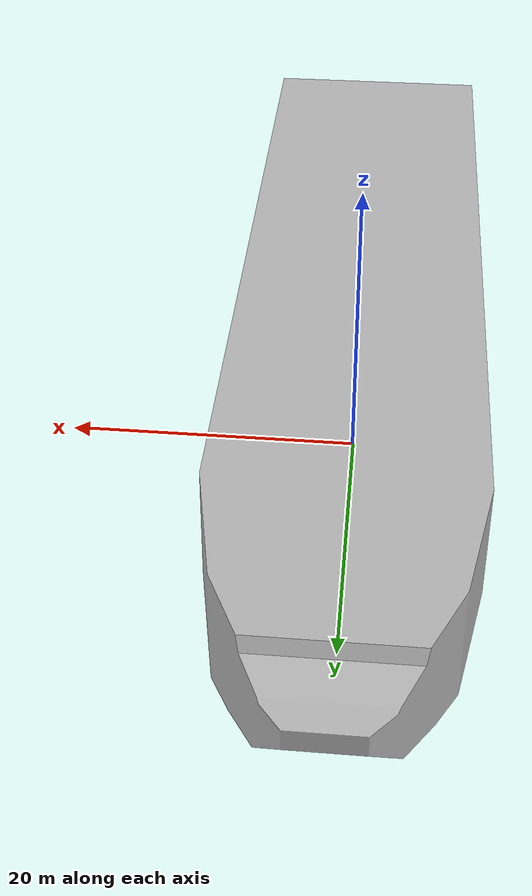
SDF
<?xml version="1.0"?>
<sdf version="1.7">
  <model name="havyard_ship_dynamic">
    <static>false</static>
    <allow_auto_disable>false</allow_auto_disable>
    <link name="base_link">
      <!-- Manual marine motion mode: disable gravity and let ship_dp_hold drive motion. -->
      <gravity>false</gravity>
      <inertial>
        <mass>2000000.0</mass>
        <pose>0 -2.0 0 0 0 0</pose>
        <inertia>
          <ixx>533333333.5</ixx>
          <ixy>0.0</ixy>
          <ixz>0.0</ixz>
          <iyy>6475000000.0</iyy>
          <iyz>0.0</iyz>
          <izz>6606666666.5</izz>
        </inertia>
      </inertial>

      <visual name="visual">
        <geometry>
          <mesh>
            <uri>model://Ship/havyard824.dae</uri>
            <scale>1 1 1</scale>
          </mesh>
        </geometry>
      </visual>

      <!-- Simple contact mesh for deck/container interaction. -->
      <collision name="deck_contact_collision">
        <pose>0 -1.5 0 1.5708 0 0</pose>
        <geometry>
          <mesh>
            <uri>model://Ship/Havyard_collision_mesh.obj</uri>
            <scale>1 1 1</scale>
          </mesh>
        </geometry>
      </collision>

    </link>

    <plugin filename="gz-sim-velocity-control-system" name="gz::sim::systems::VelocityControl" />
  </model>
</sdf>
